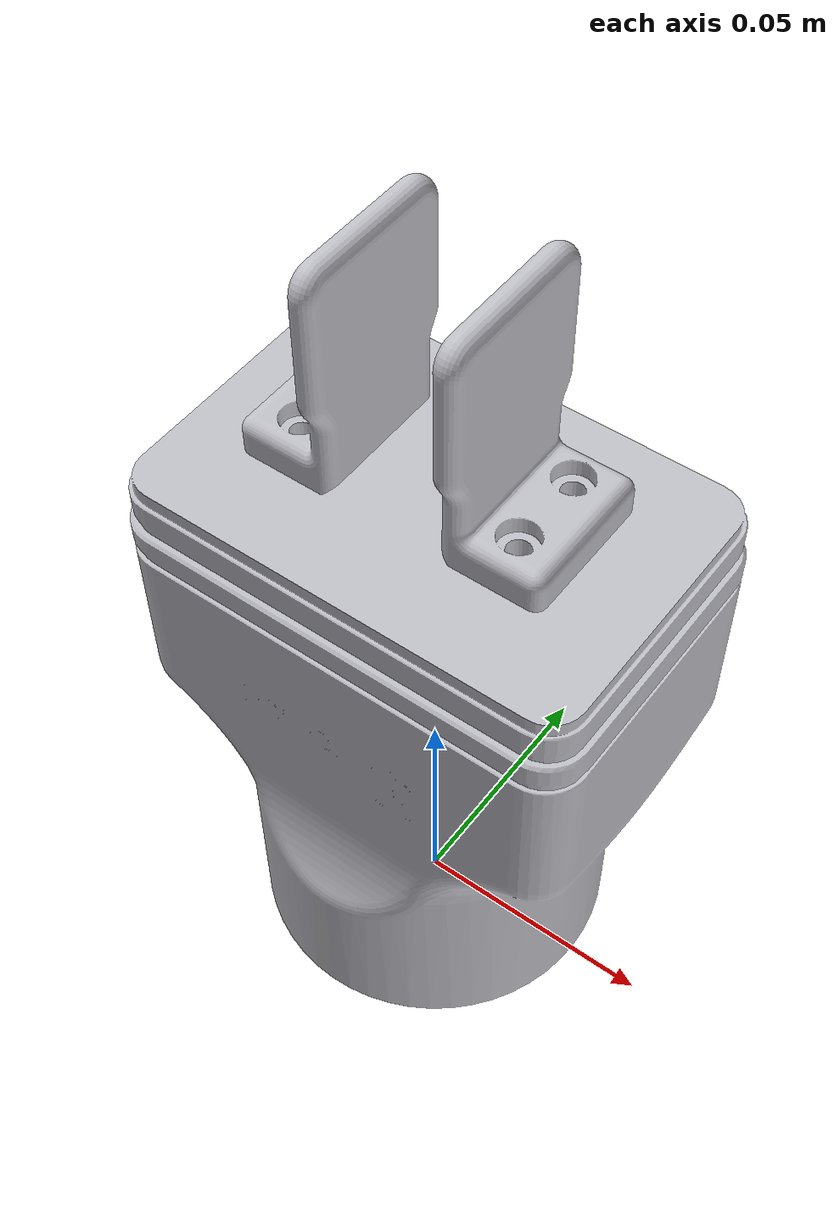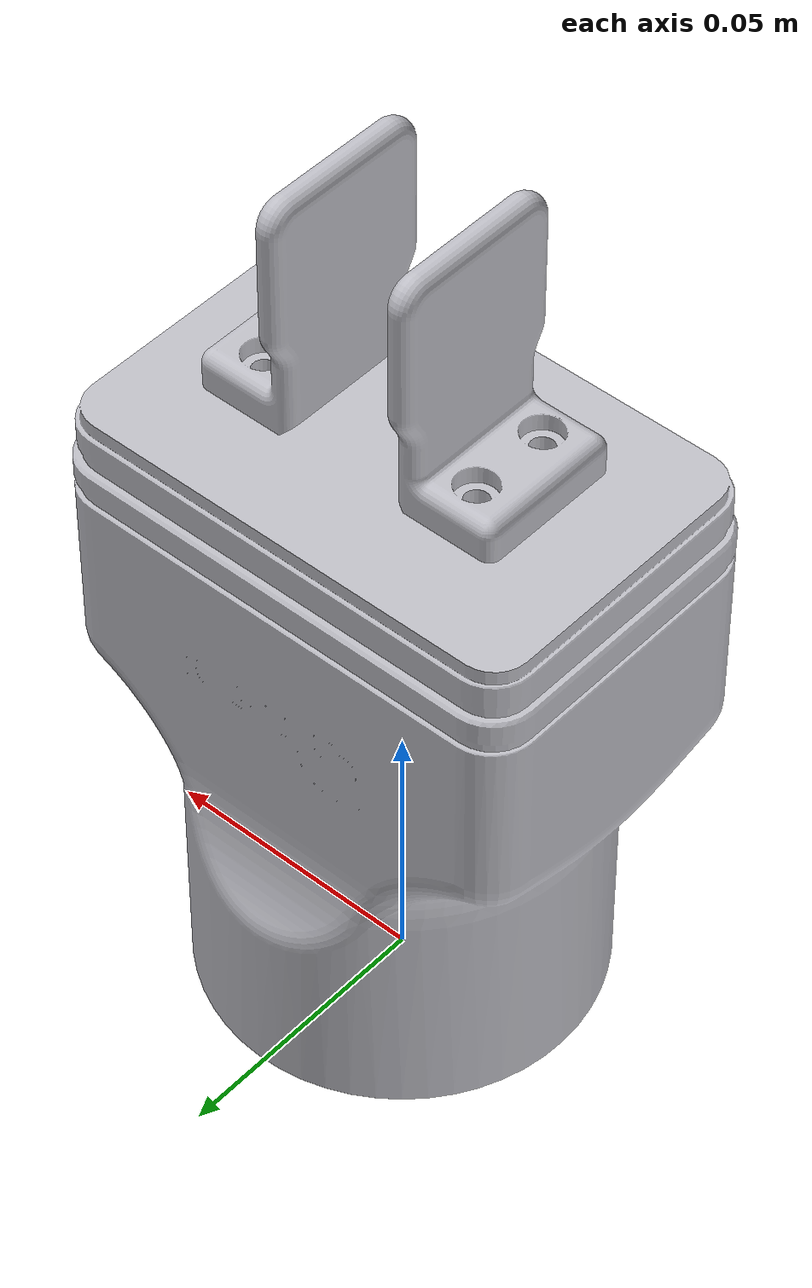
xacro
<?xml version="1.0"?>
<robot xmlns:xacro="http://wiki.ros.org/xacro" name="onrobot_2fg7">
    <xacro:arg name="prefix" default=""/>
    <xacro:arg name="port" default="502" />
    <xacro:arg name="address" default="" />
    <xacro:arg name="force" default="" />
    <xacro:arg name="position_filtering" default="" />
    <xacro:arg name="velocity_filtering" default="" />
    <xacro:arg name="use_mock_hardware" default="false"/>

    <xacro:include filename="$(find onrobot_2fg7_description)/urdf/onrobot_2fg7.xacro"/>
    <xacro:include filename="$(find onrobot_2fg7_description)/ros2_control/onrobot_2fg7.ros2_control.xacro"/>

    <link name="world"></link>

    <xacro:onrobot_2fg7 prefix="$(arg prefix)" parent="world">
        <origin xyz="0 0 0" rpy="0 0 0"/>
    </xacro:onrobot_2fg7>

    <!-- Attach right fingertip -->
    <xacro:onrobot_2fg7_fingertip prefix="right_" parent="$(arg prefix)right_attachment">
        <origin xyz="0 0 0" rpy="0 0 3.14159265359"/>
    </xacro:onrobot_2fg7_fingertip>

    <!-- Attach left fingertip -->
    <xacro:onrobot_2fg7_fingertip prefix="left_" parent="$(arg prefix)left_attachment">
        <origin xyz="0 0 0" rpy="0 0 0"/>
    </xacro:onrobot_2fg7_fingertip>

    <!-- ros2_control description -->
    <xacro:onrobot_2fg7_ros2_control
    name="onrobot_2fg7"
    prefix="$(arg prefix)"
    port="$(arg port)"
    address="$(arg address)"
    force="$(arg force)"
    position_filtering="$(arg position_filtering)"
    velocity_filtering="$(arg velocity_filtering)"
    use_mock_hardware="$(arg use_mock_hardware)" />

</robot>

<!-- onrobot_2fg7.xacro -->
<robot name="onrobot_2fg7"
  xmlns:xacro="http://www.ros.org/wiki/xacro">

  <xacro:include filename="$(find onrobot_2fg7_description)/urdf/materials.xacro" />

  <xacro:macro name="onrobot_2fg7" params="prefix parent *origin">

    <link name="${prefix}base_link">
      <inertial>
        <origin xyz="-4.898915958379213e-05 2.84756960271082e-06 0.06811082379774974" rpy="0 0 0"/>
        <mass value="1.2646523179240972"/>
        <inertia ixx="0.001504" iyy="0.001812" izz="0.001053" ixy="-0.0" iyz="0.0" ixz="-3e-06"/>
      </inertial>
      <visual>
        <origin xyz="0 0 0" rpy="0 0 0"/>
        <geometry>
          <mesh filename="package://onrobot_2fg7_description/meshes/base_link.stl" scale="0.001 0.001 0.001"/>
        </geometry>
        <material name="silver"/>
      </visual>
      <collision>
        <origin xyz="0 0 0" rpy="0 0 0"/>
        <geometry>
          <mesh filename="package://onrobot_2fg7_description/meshes/base_link.stl" scale="0.001 0.001 0.001"/>
        </geometry>
      </collision>
    </link>

    <link name="${prefix}right_attachment"></link>

    <link name="${prefix}left_attachment"></link>

    <joint name="${prefix}gripper_joint" type="prismatic">
      <origin xyz="0.0 0.0 0.12005" rpy="0 0 0"/>
      <parent link="${prefix}base_link"/>
      <child link="${prefix}left_attachment"/>
      <axis xyz="-1.0 0.0 0.0"/>
      <limit lower="0.0115" upper="0.0305" effort="140" velocity="0.45"/>
      <!-- total 0.38 -->
    </joint>

    <joint name="${prefix}right_finger_joint" type="prismatic">
      <origin xyz="0.0 0.0 0.12005" rpy="0 0 0"/>
      <parent link="${prefix}base_link"/>
      <child link="${prefix}right_attachment"/>
      <axis xyz="1.0 0.0 0.0"/>
      <limit lower="0.0115" upper="0.0305" effort="140" velocity="0.45"/>
      <mimic joint="${prefix}gripper_joint" multiplier="1.0"/>
    </joint>

    <joint name="${prefix}2fg7_attach_joint" type="fixed">
      <parent link="${parent}"/>
      <child link="${prefix}base_link"/>
      <xacro:insert_block name="origin"/>
      <axis xyz="0 0 1"/>
    </joint>
  </xacro:macro>

  <xacro:macro name="onrobot_2fg7_fingertip" params="prefix parent *origin">

    <link name="${prefix}onrobot_2fg7_finger_link">
      <inertial>
        <origin xyz="0.0 0.0 0.0" rpy="0 0 0"/>
        <mass value="0.023219383355922288"/>
        <inertia ixx="6e-06" iyy="5e-06" izz="2e-06" ixy="-0.0" iyz="-0.0" ixz="1e-06"/>
      </inertial>
      <visual>
        <origin xyz="0.0 0.0 0.0" rpy="0 0 0"/>
        <geometry>
          <mesh filename="package://onrobot_2fg7_description/meshes/finger_link.stl" scale="0.001 0.001 0.001"/>
        </geometry>
        <material name="silver"/>
      </visual>
      <collision name="right_finger_collision">
        <origin xyz="0.0 0.0 0.0" rpy="0 0 0"/>
        <geometry>
          <mesh filename="package://onrobot_2fg7_description/meshes/finger_link.stl" scale="0.001 0.001 0.001"/>
        </geometry>
      </collision>
    </link>

    <joint name="${prefix}onrobot_2fg7_fingertip_joint" type="fixed">
      <parent link="${parent}"/>
      <child link="${prefix}onrobot_2fg7_finger_link"/>
      <xacro:insert_block name="origin"/>
      <axis xyz="0 0 1"/>
    </joint>

  </xacro:macro>

</robot>
